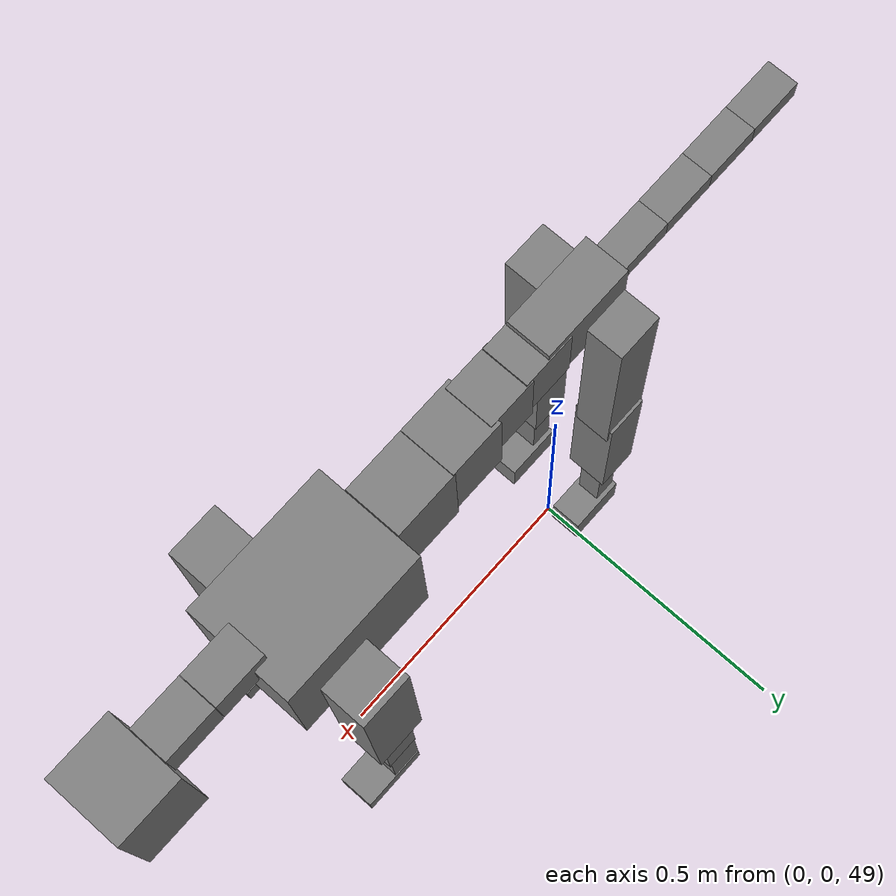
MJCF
<mujoco model="dog">

    <default>
        <joint armature="0.02" stiffness="1" damping="0.2" limited="true"/>
        <geom condim="3" friction="1 0.05 0.05" margin="0.01"/>
        <motor ctrllimited="true" ctrlrange="-1.0 1.0" forcelimited="true" gear="50"/>
    </default>

    <compiler inertiafromgeom="true" angle="radian"/>

    <option timestep="0.016" iterations="50" tolerance="1e-10" solver="Newton" jacobian="dense" cone="pyramidal"/>

    <size nconmax="20000" njmax="60000" nstack="5000000"/>
    <visual>
        <map force="0.1" zfar="30"/>
        <rgba haze="0.15 0.25 0.35 1"/>
        <quality shadowsize="2048"/>
        <global offwidth="800" offheight="800"/>
    </visual>

    <asset>
        <texture type="skybox" builtin="gradient" rgb1="0.3 0.5 0.7" rgb2="0 0 0" width="512" height="512"/>
        <texture name="texplane" type="2d" builtin="checker" rgb1=".2 .3 .4" rgb2=".1 0.15 0.2" width="512" height="512"
                 mark="cross" markrgb=".8 .8 .8"/>
        <texture name="texgeom" type="cube" builtin="flat" mark="cross" width="127" height="1278" rgb1="0.8 0.6 0.4"
                 rgb2="0.8 0.6 0.4" markrgb="1 1 1" random="0.01"/>

        <material name="matplane" reflectance="0.3" texture="texplane" texrepeat="1 1" texuniform="true"/>
        <material name="matgeom" texture="texgeom" texuniform="true" rgba="0.8 0.6 .4 1"/>
    </asset>

    <worldbody>
        <geom name="floor" pos="0 0 0" size="0 0 .25" type="plane" material="matplane" condim="3"/>

        <light directional="false" diffuse=".2 .2 .2" specular="0 0 0" pos="0 0 5" dir="0 0 -1" castshadow="false"/>
        <light mode="targetbodycom" target="torso" directional="false" diffuse=".8 .8 .8" specular="0.3 0.3 0.3"
               pos="0 0 4.0" dir="0 0 -1"/>

        <body name="root" pos="0 0 50">
            <freejoint name="root_1"/>
            <geom type="box" pos="0 0 -0.02" size="0.0774  0.0358  0.063" density="2030"/>

            <body name="spine1" pos="0.054 0 0">
                <joint name="spine1_y" axis="0 1 0" range="0 0.7" limited="true"/>
                <geom type="box" pos="0.02375 0 -0.03" size="0.04375  0.0375  0.05985" density="2030"/>

                <body name="spine2" pos="0.0612 0 0">
                    <joint name="spine2_y" axis="0 1 0" range="-0.15 0.15" limited="true"/>
                    <geom type="box" pos="0.03555  0  -0.04" size="0.04055  0.039  0.06615" density="2030"/>

                    <body name="spine3" pos="0.0730 0 0">
                        <joint name="spine3_y" axis="0 1 0" range="-0.15 0.15" limited="true"/>
                        <geom type="box" pos="0.03555  0  -0.057" size="0.04555  0.0445  0.081" density="2030"/>

                        <body name="spine4" pos="0.0780 0 0">
                            <joint name="spine4_y" axis="0 1 0" range="-0.15 0.15" limited="true"/>
                            <geom type="box" pos="0.05265  0  -0.07" size="0.05265  0.045  0.09135" density="2030"/>

                            <body name="torso" pos="0.1082 0 0">
                                <joint name="torso_y" axis="0 1 0" range="-0.15 0.15" limited="true"/>
                                <geom type="box" pos="0.11925  0  -0.085" size="0.11925  0.085  0.11745"
                                      density="2030"/>

                                <body name="neck1" pos="0.2160  0   0.0180">
                                    <joint name="neck1_y" axis="0 1 0" range="-1.2  -1" limited="true"/>
                                    <geom type="box" pos="0.0423  0  0" size="0.0423  0.03  0.036" density="2325"/>

                                    <body name="neck2" pos="0.0853  0  0">
                                        <joint name="neck2_y" axis="0 1 0" range="0.1  0" limited="true"/>
                                        <geom type="box" pos="0.0423  0  0" size="0.0423  0.03  0.036" density="2325"/>

                                        <body name="head" pos="0.0853  0  0">
                                            <joint name="head_y" axis="0 1 0" range="-0.3  -0.2" limited="true"/>
                                            <geom type="box" pos="0.0531  0  -0.055" size="0.0531  0.06  0.1044"
                                                  density="4030"/>

                                        </body>
                                    </body>
                                </body>

                                <body name="front_shoulder" pos="0.156  0   -0.0480">
                                    <joint name="front_shoulder_y" axis="0 1 0" range="-1 1.5" limited="true"/>
                                    <geom type="box" pos="0 0.13 -0.1513" size="0.0423  0.0361  0.1779" density="1158"/>
                                    <geom type="box" pos="0 -0.13 -0.1513" size="0.0423  0.0361  0.1779"
                                          density="1158"/>

                                    <body name="front_elbow" pos="0  0  -0.3025">
                                        <joint name="front_elbow_y" axis="0 1 0" range="-2 0" limited="true"/>
                                        <geom type="box" pos="0 0.13 -0.0922" size="0.0275  0.0281  0.0922"
                                              density="1081"/>
                                        <geom type="box" pos="0 -0.13 -0.0922" size="0.0275  0.0281  0.0922"
                                              density="1081"/>

                                        <body name="front_wrist" pos="0  0  -0.1844">
                                            <joint name="front_wrist_y" axis="0 1 0" range="-0.2 0" limited="true"/>
                                            <geom type="box" pos="0 0.13 -0.0588" size="0.0254  0.0283  0.0720"
                                                  density="1664"/>
                                            <geom type="box" pos="0 -0.13 -0.0588" size="0.0254  0.0283  0.0720"
                                                  density="1664"/>

                                            <body name="front_finger_end" pos="0  0  -0.1177">
                                                <joint name="front_finger_y" axis="0 1 0" range="-0.4 1"
                                                       limited="true"/>
                                                <geom type="box" pos="0.0301  0.13  -0.0072"
                                                      size="0.0552  0.0301  0.0222" density="1515"/>
                                                <geom type="box" pos="0.0301  -0.13  -0.0072"
                                                      size="0.0552  0.0301  0.0222" density="1515"/>

                                            </body>

                                        </body>
                                    </body>
                                </body>

                            </body>
                        </body>
                    </body>
                </body>
            </body>

            <body name="back_hip" pos="-0.03 0 -0.018">
                <joint name="back_hip_y" axis="0 1 0" range="-1.5 0.3" limited="true"/>
                <geom type="box" pos="0 0.07 -0.1582" size="0.0375  0.0294  0.1810" density="1154"/>
                <geom type="box" pos="0 -0.07 -0.1582" size="0.0375  0.0294  0.1810" density="1154"/>

                <body name="back_knee" pos="0  0  -0.3164">
                    <joint name="back_knee_y" axis="0 1 0" range="0 2.8" limited="true"/>
                    <geom type="box" pos="0 0.07 -0.1193" size="0.0345  0.0340  0.1349" density="1227"/>
                    <geom type="box" pos="0 -0.07 -0.1193" size="0.0345  0.0340  0.1349" density="1227"/>

                    <body name="back_ankle" pos="0  0  -0.2386">
                        <joint name="back_ankle_y" axis="0 1 0" range="-2.2 0" limited="true"/>
                        <geom type="box" pos="0 0.07 -0.0945" size="0.0193  0.0193  0.1058" density="1284"/>
                        <geom type="box" pos="0 -0.07 -0.0945" size="0.0193  0.0193  0.1058" density="1284"/>

                        <body name="back_toe_end" pos="0  0  -0.1890">
                            <joint name="back_toe_y" axis="0 1 0" range="-0.4 1" limited="true"/>
                            <geom type="box" pos="0.0270  0.07  -0.0193" size="0.0494  0.0270  0.0343" density="1515"/>
                            <geom type="box" pos="0.0270  -0.07  -0.0193" size="0.0494  0.0270  0.0343" density="1515"/>

                        </body>
                    </body>
                </body>
            </body>

            <body name="tail1" pos="-0.074 0 -0.006">
                <joint name="tail1_y" axis="0 1 0" range="-0.2 0.2" limited="true"/>
                <geom type="box" pos="-0.0536  0  0" size="0.045  0.025  0.0175" density="1587"/>

                <body name="tail2" pos="-0.09 0 0">
                    <joint name="tail2_y" axis="0 1 0" range="-0.2 0.2" limited="true"/>
                    <geom type="box" pos="-0.0536  0  0" size="0.045  0.025  0.0175" density="1587"/>

                    <body name="tail3" pos="-0.09 0 0">
                        <joint name="tail3_y" axis="0 1 0" range="-0.2 0.2" limited="true"/>
                        <geom type="box" pos="-0.0536  0  0" size="0.045  0.025  0.0175" density="1587"/>

                        <body name="tail4" pos="-0.09 0 0">
                            <joint name="tail4_y" axis="0 1 0" range="-0.2 0.2" limited="true"/>
                            <geom type="box" pos="-0.0536  0  0" size="0.045  0.025  0.0175" density="1587"/>

                        </body>
                    </body>
                </body>
            </body>
        </body>
    </worldbody>

    <actuator>
        <motor joint="spine1_y" forcerange="-150 150     "/>
        <motor joint="spine2_y" forcerange="-150 150     "/>
        <motor joint="spine3_y" forcerange="-150 150     "/>
        <motor joint="spine4_y" forcerange="-150 150     "/>
        <motor joint="torso_y" forcerange="-150 150     "/>
        <motor joint="neck1_y" forcerange="-100 100       "/>
        <motor joint="neck2_y" forcerange="-100 100       "/>
        <motor joint="head_y" forcerange="-150 150       "/>
        <motor joint="front_shoulder_y" forcerange="-156.46 184.36"/>
        <motor joint="front_elbow_y" forcerange="-121.92 182.66"/>
        <motor joint="front_wrist_y" forcerange="-85.28 140.94"/>
        <motor joint="front_finger_y" forcerange="-26.24 94.32"/>
        <motor joint="back_hip_y" forcerange="-238.71 353.66"/>
        <motor joint="back_knee_y" forcerange="-399.35 294.64"/>
        <motor joint="back_angle_y" forcerange="-84.78 124.36"/>
        <motor joint="back_toe_y" forcerange="-112.90 22.71"/>
        <motor joint="tail1_y" forcerange="-50 50     "/>
        <motor joint="tail2_y" forcerange="-50 50     "/>
        <motor joint="tail3_y" forcerange="-50 50     "/>
        <motor joint="tail4_y" forcerange="-50 50     "/>
    </actuator>
</mujoco>
